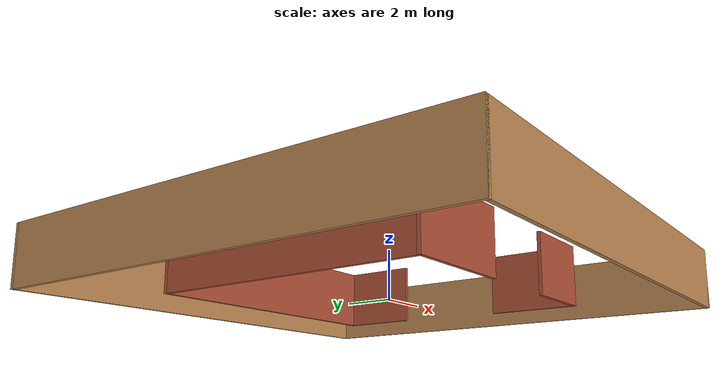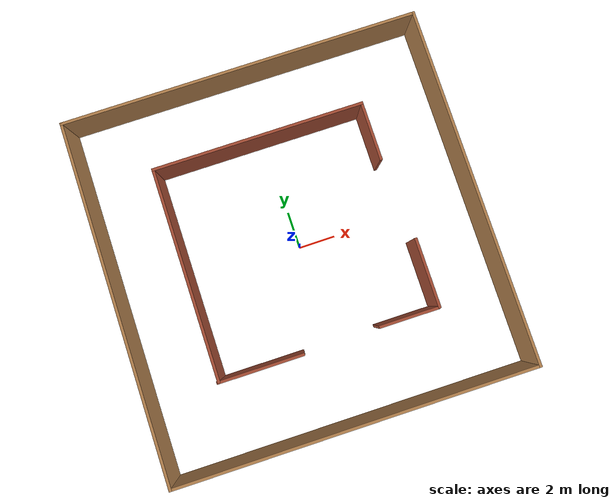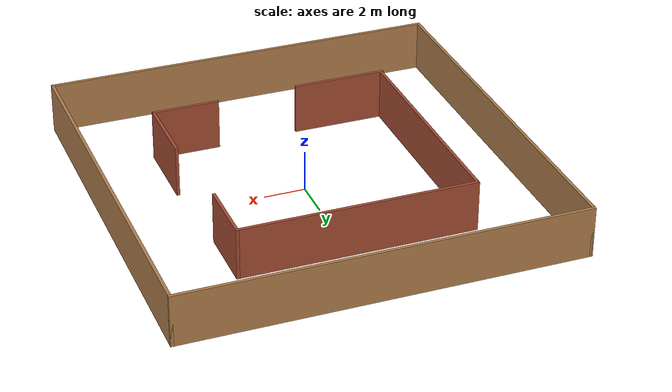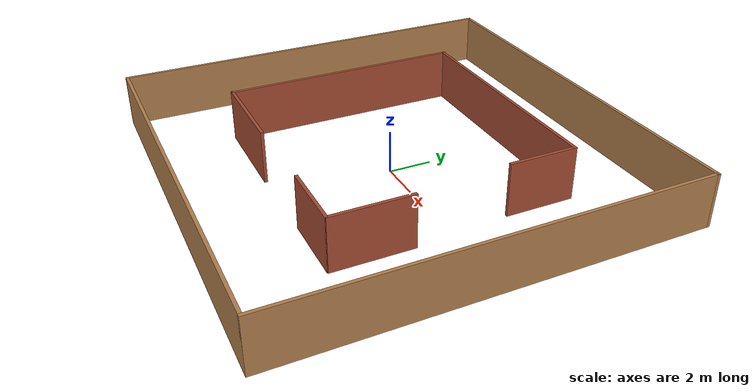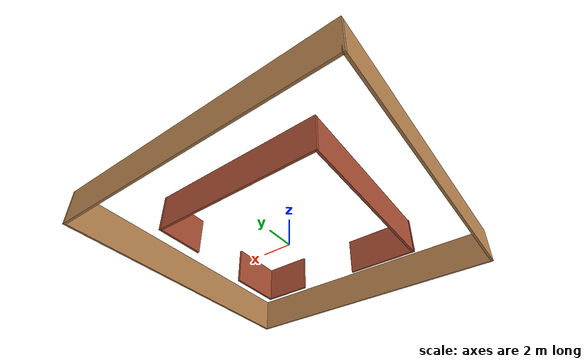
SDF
<?xml version='1.0'?>
<sdf version='1.7'>
  <model name='world'>
    <pose>-0.171838 0.075371 0 0 -0 0</pose>
    <link name='Wall_0'>
      <collision name='Wall_0_Collision'>
        <geometry>
          <box>
            <size>19.5 0.15 2.5</size>
          </box>
        </geometry>
        <pose>0 0 1.25 0 -0 0</pose>
      </collision>
      <visual name='Wall_0_Visual'>
        <pose>0 0 1.25 0 -0 0</pose>
        <geometry>
          <box>
            <size>19.5 0.15 2.5</size>
          </box>
        </geometry>
        <material>
          <script>
            <uri>file://media/materials/scripts/gazebo.material</uri>
            <name>Gazebo/Wood</name>
          </script>
          <ambient>1 1 1 1</ambient>
        </material>
        <meta>
          <layer>0</layer>
        </meta>
      </visual>
      <pose>-0 9.675 0 0 -0 0</pose>
    </link>
    <link name='Wall_10'>
      <collision name='Wall_10_Collision'>
        <geometry>
          <box>
            <size>3.75 0.15 2.5</size>
          </box>
        </geometry>
        <pose>0 0 1.25 0 -0 0</pose>
      </collision>
      <visual name='Wall_10_Visual'>
        <pose>0 0 1.25 0 -0 0</pose>
        <geometry>
          <box>
            <size>3.75 0.15 2.5</size>
          </box>
        </geometry>
        <material>
          <script>
            <uri>file://media/materials/scripts/gazebo.material</uri>
            <name>Gazebo/Bricks</name>
          </script>
          <ambient>1 1 1 1</ambient>
        </material>
        <meta>
          <layer>0</layer>
        </meta>
      </visual>
      <pose>5.85621 -3.52982 0 0 -0 -1.5708</pose>
    </link>
    <link name='Wall_12'>
      <collision name='Wall_12_Collision'>
        <geometry>
          <box>
            <size>3.25 0.15 2.5</size>
          </box>
        </geometry>
        <pose>0 0 1.25 0 -0 0</pose>
      </collision>
      <visual name='Wall_12_Visual'>
        <pose>0 0 1.25 0 -0 0</pose>
        <geometry>
          <box>
            <size>3.25 0.15 2.5</size>
          </box>
        </geometry>
        <material>
          <script>
            <uri>file://media/materials/scripts/gazebo.material</uri>
            <name>Gazebo/Bricks</name>
          </script>
          <ambient>1 1 1 1</ambient>
        </material>
        <meta>
          <layer>0</layer>
        </meta>
      </visual>
      <pose>4.25068 -5.36041 0 0 -0 0</pose>
    </link>
    <link name='Wall_14'>
      <collision name='Wall_14_Collision'>
        <geometry>
          <box>
            <size>3.25 0.15 2.5</size>
          </box>
        </geometry>
        <pose>0 0 1.25 0 -0 0</pose>
      </collision>
      <visual name='Wall_14_Visual'>
        <pose>0 0 1.25 0 -0 0</pose>
        <geometry>
          <box>
            <size>3.25 0.15 2.5</size>
          </box>
        </geometry>
        <material>
          <script>
            <uri>file://media/materials/scripts/gazebo.material</uri>
            <name>Gazebo/Bricks</name>
          </script>
          <ambient>1 1 1 1</ambient>
        </material>
        <meta>
          <layer>0</layer>
        </meta>
      </visual>
      <pose>5.50505 4.33438 0 0 -0 -1.5708</pose>
    </link>
    <link name='Wall_2'>
      <collision name='Wall_2_Collision'>
        <geometry>
          <box>
            <size>19.5 0.15 2.5</size>
          </box>
        </geometry>
        <pose>0 0 1.25 0 -0 0</pose>
      </collision>
      <visual name='Wall_2_Visual'>
        <pose>0 0 1.25 0 -0 0</pose>
        <geometry>
          <box>
            <size>19.5 0.15 2.5</size>
          </box>
        </geometry>
        <material>
          <script>
            <uri>file://media/materials/scripts/gazebo.material</uri>
            <name>Gazebo/Wood</name>
          </script>
          <ambient>1 1 1 1</ambient>
        </material>
        <meta>
          <layer>0</layer>
        </meta>
      </visual>
      <pose>-9.675 0 0 0 -0 -1.5708</pose>
    </link>
    <link name='Wall_3'>
      <collision name='Wall_3_Collision'>
        <geometry>
          <box>
            <size>19.5 0.15 2.5</size>
          </box>
        </geometry>
        <pose>0 0 1.25 0 -0 0</pose>
      </collision>
      <visual name='Wall_3_Visual'>
        <pose>0 0 1.25 0 -0 0</pose>
        <geometry>
          <box>
            <size>19.5 0.15 2.5</size>
          </box>
        </geometry>
        <material>
          <script>
            <uri>file://media/materials/scripts/gazebo.material</uri>
            <name>Gazebo/Wood</name>
          </script>
          <ambient>1 1 1 1</ambient>
        </material>
        <meta>
          <layer>0</layer>
        </meta>
      </visual>
      <pose>-0 -9.675 0 0 -0 0</pose>
    </link>
    <link name='Wall_4'>
      <collision name='Wall_4_Collision'>
        <geometry>
          <box>
            <size>19.5 0.15 2.5</size>
          </box>
        </geometry>
        <pose>0 0 1.25 0 -0 0</pose>
      </collision>
      <visual name='Wall_4_Visual'>
        <pose>0 0 1.25 0 -0 0</pose>
        <geometry>
          <box>
            <size>19.5 0.15 2.5</size>
          </box>
        </geometry>
        <material>
          <script>
            <uri>file://media/materials/scripts/gazebo.material</uri>
            <name>Gazebo/Wood</name>
          </script>
          <ambient>1 1 1 1</ambient>
        </material>
        <meta>
          <layer>0</layer>
        </meta>
      </visual>
      <pose>9.675 0 0 0 -0 1.5708</pose>
    </link>
    <link name='Wall_6'>
      <collision name='Wall_6_Collision'>
        <geometry>
          <box>
            <size>11.5 0.15 2.5</size>
          </box>
        </geometry>
        <pose>0 0 1.25 0 -0 0</pose>
      </collision>
      <visual name='Wall_6_Visual'>
        <pose>0 0 1.25 0 -0 0</pose>
        <geometry>
          <box>
            <size>11.5 0.15 2.5</size>
          </box>
        </geometry>
        <material>
          <script>
            <uri>file://media/materials/scripts/gazebo.material</uri>
            <name>Gazebo/Bricks</name>
          </script>
          <ambient>1 1 1 1</ambient>
        </material>
        <meta>
          <layer>0</layer>
        </meta>
      </visual>
      <pose>-0.16995 5.88438 0 0 -0 3.14159</pose>
    </link>
    <link name='Wall_7'>
      <collision name='Wall_7_Collision'>
        <geometry>
          <box>
            <size>11.4159 0.15 2.5</size>
          </box>
        </geometry>
        <pose>0 0 1.25 0 -0 0</pose>
      </collision>
      <visual name='Wall_7_Visual'>
        <pose>0 0 1.25 0 -0 0</pose>
        <geometry>
          <box>
            <size>11.4159 0.15 2.5</size>
          </box>
        </geometry>
        <material>
          <script>
            <uri>file://media/materials/scripts/gazebo.material</uri>
            <name>Gazebo/Bricks</name>
          </script>
          <ambient>1 1 1 1</ambient>
        </material>
        <meta>
          <layer>0</layer>
        </meta>
      </visual>
      <pose>-5.84495 0.210952 0 0 -0 -1.5708</pose>
    </link>
    <link name='Wall_8'>
      <collision name='Wall_8_Collision'>
        <geometry>
          <box>
            <size>4.62137 0.15 2.5</size>
          </box>
        </geometry>
        <pose>0 0 1.25 0 -0 0</pose>
      </collision>
      <visual name='Wall_8_Visual'>
        <pose>0 0 1.25 0 -0 0</pose>
        <geometry>
          <box>
            <size>4.62137 0.15 2.5</size>
          </box>
        </geometry>
        <material>
          <script>
            <uri>file://media/materials/scripts/gazebo.material</uri>
            <name>Gazebo/Bricks</name>
          </script>
          <ambient>1 1 1 1</ambient>
        </material>
        <meta>
          <layer>0</layer>
        </meta>
      </visual>
      <pose>-3.64972 -5.46248 0 0 -0 0</pose>
    </link>
    <static>1</static>
  </model>
</sdf>
